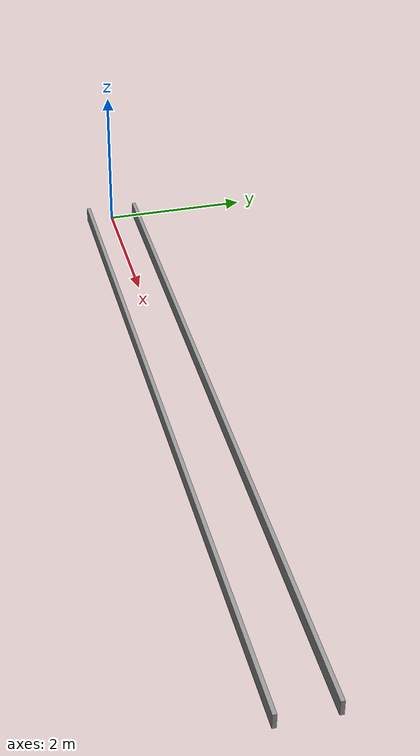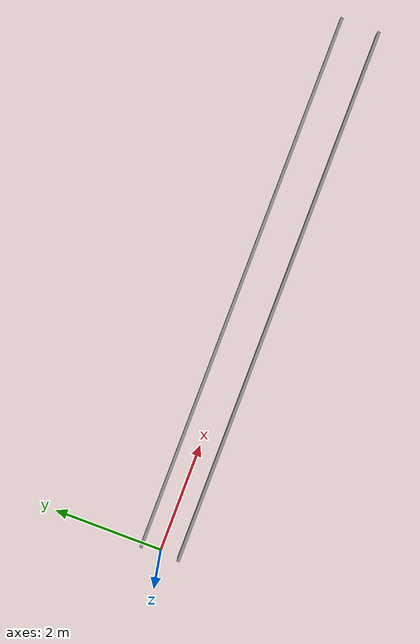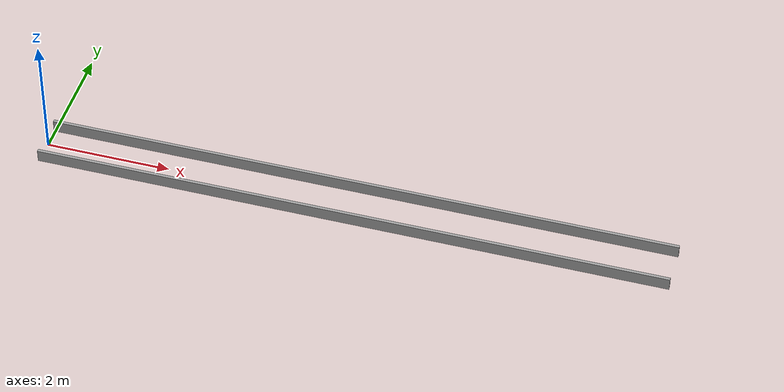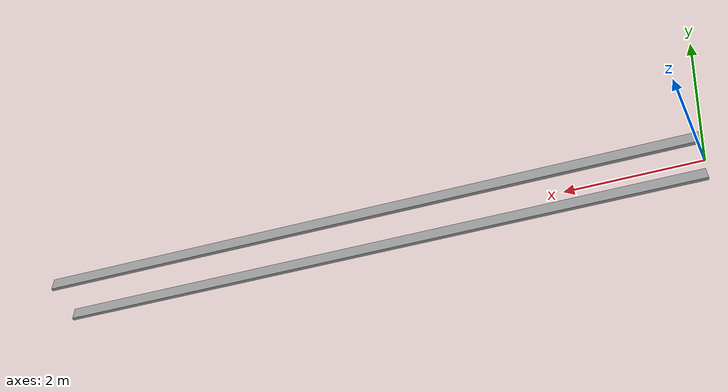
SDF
<?xml version='1.0'?>
<sdf version='1.7'>
  <model name='Empty_Track'>
    <pose>4.975 0 0 0 -0 0</pose>
    <link name='Wall_0'>
      <collision name='Wall_0_Collision'>
        <geometry>
          <box>
            <size>10 0.05 0.2</size>
          </box>
        </geometry>
        <pose>0 0 0.1 0 -0 0</pose>
      </collision>
      <visual name='Wall_0_Visual'>
        <pose>0 0 0.1 0 -0 0</pose>
        <geometry>
          <box>
            <size>10 0.05 0.2</size>
          </box>
        </geometry>
        <material>
          <script>
            <uri>file://media/materials/scripts/gazebo.material</uri>
            <name>Gazebo/Grey</name>
          </script>
          <ambient>1 1 1 1</ambient>
        </material>
        <meta>
          <layer>0</layer>
        </meta>
      </visual>
      <pose>-0 -0.35 0 0 -0 0</pose>
    </link>
    <link name='Wall_2'>
      <collision name='Wall_2_Collision'>
        <geometry>
          <box>
            <size>10 0.05 0.2</size>
          </box>
        </geometry>
        <pose>0 0 0.1 0 -0 0</pose>
      </collision>
      <visual name='Wall_2_Visual'>
        <pose>0 0 0.1 0 -0 0</pose>
        <geometry>
          <box>
            <size>10 0.05 0.2</size>
          </box>
        </geometry>
        <material>
          <script>
            <uri>file://media/materials/scripts/gazebo.material</uri>
            <name>Gazebo/Grey</name>
          </script>
          <ambient>1 1 1 1</ambient>
        </material>
        <meta>
          <layer>0</layer>
        </meta>
      </visual>
      <pose>-0 0.35 0 0 -0 0</pose>
    </link>
    <static>1</static>
  </model>
</sdf>
